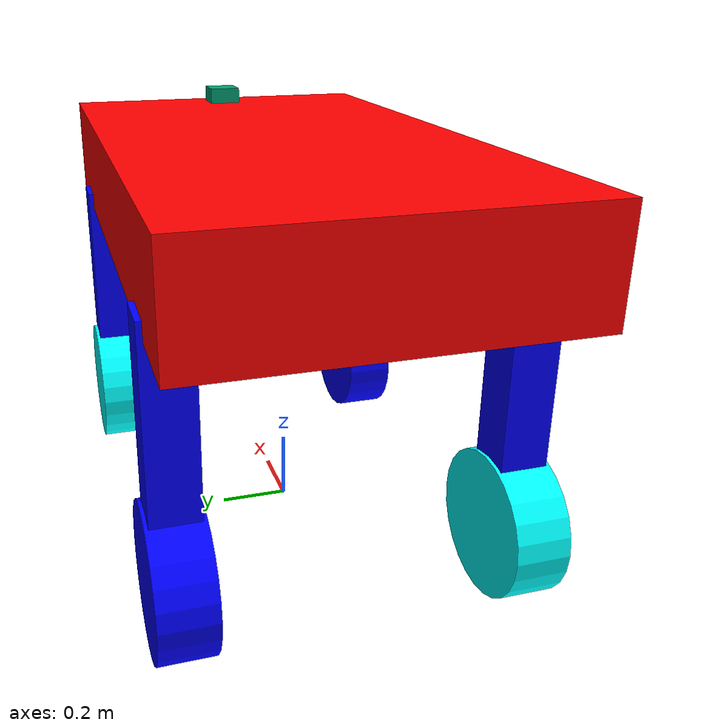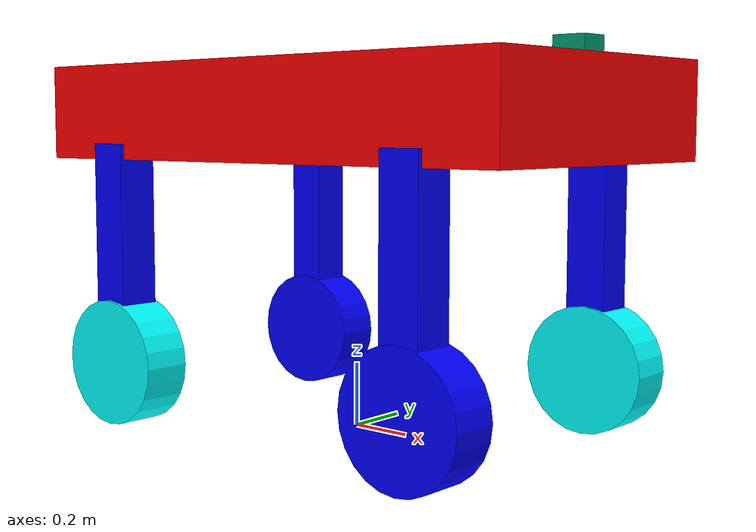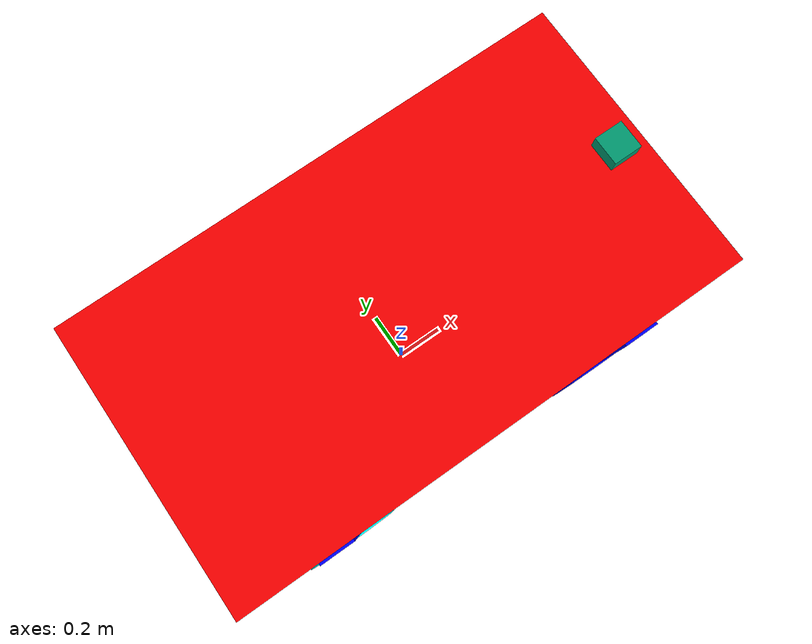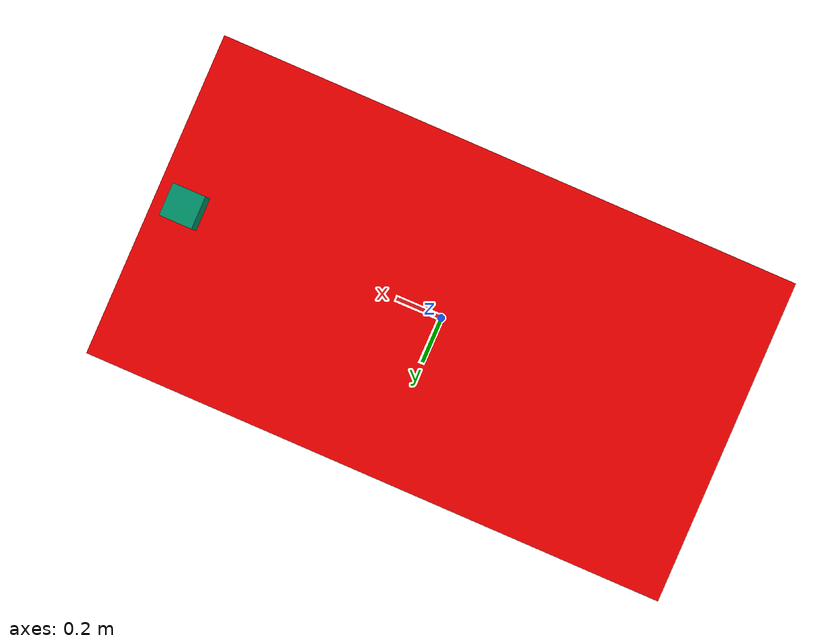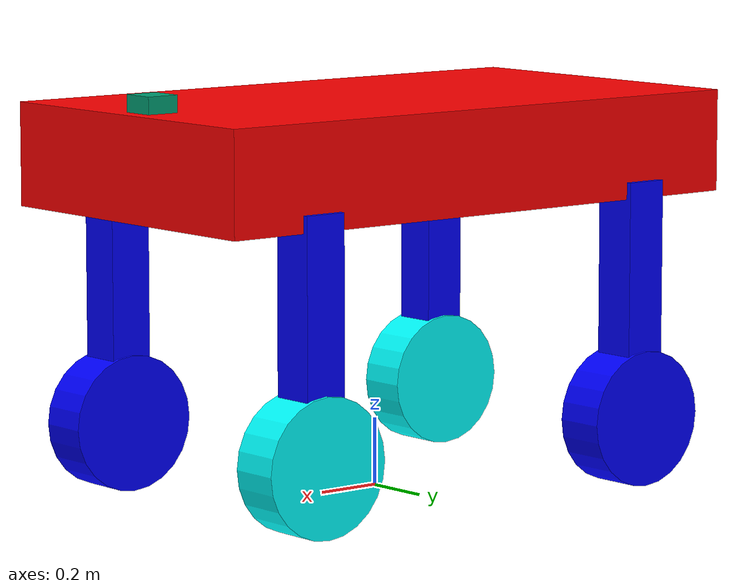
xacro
<?xml version="1.0"?>
<robot xmlns:xacro="http://www.ros.org/wiki/xacro"  name="robot">

    <xacro:include filename="robot_core.xacro" />
    <xacro:include filename="robot_gazebo.xacro" />
    <xacro:include filename="lidar.xacro" />
    <xacro:include filename="ros2_control.xacro" />

</robot>

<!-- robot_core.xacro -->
<robot xmlns:xacro="http://www.ros.org/wiki/xacro"  name="robot">

<!--xacro:include filename="inertial_file.xacro" /-->

<xacro:property name ="chassis_length" value="1.8"/>
<xacro:property name ="chassis_width" value="1"/>
<xacro:property name ="chassis_height" value="0.3"/>
<xacro:property name ="chassis_mass" value="200"/>

<xacro:property name="wheel_radius" value="0.3" />
<xacro:property name="wheel_thickness" value="0.1" />
<xacro:property name="wheel_mass" value="3" />

<xacro:property name="wheel_offset_x" value="1.0"/>
<xacro:property name="wheel_offset_y" value="0.5"/>
<xacro:property name="wheel_offset_z" value="0.01"/>

<xacro:property name="leg_length" value="0.13" />
<xacro:property name="leg_width" value="0.13"/>
<xacro:property name="leg_height" value="0.8"/>
<xacro:property name="leg_mass" value="10"/>

<xacro:property name="leg_offset_x" value="1.0"/>
<xacro:property name="leg_offset_y" value="0.5"/>
<xacro:property name="leg_offset_z" value="0.1"/>

<material name="white">
    <color rgba="1 1 1 1"/>
</material>

<material name="yellow">
    <color rgba="0 1 1 1"/>
</material>

<material name="blue">
    <color rgba="0 0 1 1"/>
</material>

<material name="red">
    <color rgba="1 0 0 1"/>
</material>

<!--World-->

<link name="base_footprint"/>

<!-- Base Link-->

<joint name="base_joint" type="fixed">
    <origin xyz="0 0 1.0" rpy="0 0 0"/>
    <parent link="base_footprint"/>
    <child link="base_link"/>
</joint>

<!-- Base properties -->
<link name="base_link">
    <visual>
        <origin xyz="0 0 0" rpy="0 0 0"/>
        <geometry>
            <box size="${chassis_length} ${chassis_width} ${chassis_height}" />
        </geometry>
        <material name="red"/>
    </visual>
    <collision>
        <origin xyz="0 0 0" rpy="0 0 0"/>
        <geometry>
            <box size="${chassis_length} ${chassis_width} ${chassis_height}" />
        </geometry>
    </collision>
    <inertial>
        <origin xyz="0 0 0" rpy="0 0 0"/>
        <mass value="50" />
        <inertia ixx="4.54" ixy="0.0" ixz="0.0" iyy="13.88" iyz="0.0" izz="17.66" />
    </inertial>
</link>

<!-- Leg front right-->
<joint name="leg_front_right_joint" type="revolute">
    <origin xyz="0.6 -0.45 -0.5" rpy="0 0 0"/>
    <limit lower="-0.78" upper="0.78" effort="10" velocity="0.5"/>
    <parent link="base_link"/>
    <child link="leg_front_right_link"/>
    <axis xyz="0 0 1"/>
</joint>

<link name="leg_front_right_link">
    <visual>
        <origin xyz="0 0 0" rpy="0 0 0"/>
        <geometry>
            <box size="${leg_length} ${leg_width} ${leg_height}"/>
        </geometry>
        <material name="blue" />
    </visual>
    <collision>
        <origin xyz="0 0 0" rpy="0 0 0"/>
        <geometry>
            <box size="${leg_length} ${leg_width} ${leg_height}"/>
        </geometry>
    </collision>
    <inertial>
        <origin xyz="0 0 0.4" rpy="0 0 0"/>
        <mass value="10" />
        <inertia ixx="0.547" ixy="0.0" ixz="0.0" iyy="0.547" iyz="0.0" izz="0.028" />
    </inertial>
</link>

<!-- Wheel front right-->
<joint name="wheel_front_right_joint" type="continuous">
    <origin xyz="0.0 0.0 -0.3" rpy="-${pi/2} 0.0 0.0"/>
    <parent link="leg_front_right_link"/>
    <child link="wheel_front_right_link"/>
    <axis xyz="0 0 1"/> <!-- Axe de rotation (dans cet exemple, axe Y) -->
</joint>

<link name="wheel_front_right_link">
    <visual>
        <origin xyz="0 0 0" rpy="0 0 0"/>
        <geometry>
            <cylinder length="0.15" radius="0.2" />
        </geometry>
        <material name="blue" />
    </visual>
    <collision>
        <origin xyz="0 0 0" rpy="0 0 0"/>
        <geometry>
            <cylinder length="0.15" radius="0.2" />
        </geometry>
    </collision>
    <inertial>
        <origin xyz="0 0 0" rpy="0 0 0"/>
        <mass value="3" />
        <inertia ixx="0.035" ixy="0.0" ixz="0.0" iyy="0.035" iyz="0.0" izz="0.06" />
    </inertial>
</link>

<!-- Leg front left-->
<joint name="leg_front_left_joint" type="revolute">
    <limit lower="-0.78" upper="0.78" effort="10" velocity="0.5"/>
    <origin xyz="0.6 0.45 -0.5" rpy="0 0 0"/>
    <parent link="base_link"/>
    <child link="leg_front_left_link"/>
    <axis xyz="0 0 1"/>
</joint>

<link name="leg_front_left_link">
    <visual>
        <origin xyz="0 0 0" rpy="0 0 0"/>
        <geometry>
            <box size="${leg_length} ${leg_width} ${leg_height}"/>
        </geometry>
        <material name="blue" />
    </visual>
    <collision>
        <origin xyz="0 0 0" rpy="0 0 0"/>
        <geometry>
            <box size="${leg_length} ${leg_width} ${leg_height}"/>
        </geometry>
    </collision>
    <inertial>
        <origin xyz="0 0 0.4" rpy="0 0 0"/>
        <mass value="10" />
         <inertia ixx="0.547" ixy="0.0" ixz="0.0" iyy="0.547" iyz="0.0" izz="0.028" />
    </inertial>
</link>

<!--Leg front left-->
<joint name="wheel_front_left_joint" type="continuous">
    <origin xyz="0.0 0.0 -0.3" rpy="-${pi/2} 0.0 0.0"/>
    <parent link="leg_front_left_link"/>
    <child link="wheel_front_left_link"/>
    <axis xyz="0 0 1"/> <!-- Axe de rotation (dans cet exemple, axe Z) -->
</joint>

<link name="wheel_front_left_link">
    <visual>
        <origin xyz="0 0 0" rpy="0 0 0"/>
        <geometry>
            <cylinder length="0.15" radius="0.2" />
        </geometry>
        <material name="yellow" />
    </visual>
    <collision>
        <origin xyz="0 0 0" rpy="0 0 0"/>
        <geometry>
            <cylinder length="0.15" radius="0.2" />
        </geometry>
    </collision>
    <inertial>
       <origin xyz="0 0 0" rpy="0 0 0"/>
        <mass value="3" />
        <inertia ixx="0.035" ixy="0.0" ixz="0.0" iyy="0.035" iyz="0.0" izz="0.06" />
    </inertial>
</link>

<!--Leg back left -->

<joint name="leg_back_left_joint" type="fixed">
    <origin xyz="-0.6 -0.45 -0.5" rpy="0 0 0"/>
    <parent link="base_link"/>
    <child link="leg_back_left_link"/>
    <axis xyz="0 0 1"/>
</joint>

<link name="leg_back_left_link">
    <visual>
        <origin xyz="0 0 0" rpy="0 0 0"/>
        <geometry>
            <box size="${leg_length} ${leg_width} ${leg_height}"/>
        </geometry>
        <material name="blue" />
    </visual>
    <collision>
        <origin xyz="0 0 0" rpy="0 0 0"/>
        <geometry>
            <box size="${leg_length} ${leg_width} ${leg_height}"/>
        </geometry>
    </collision>
    <inertial>
        <origin xyz="0 0 0.4" rpy="0 0 0"/>
        <mass value="10" />
         <inertia ixx="0.547" ixy="0.0" ixz="0.0" iyy="0.547" iyz="0.0" izz="0.028" />
    </inertial>
</link>
<!--wheel back left-->
<!--Leg front left-->
<joint name="wheel_back_left_joint" type="continuous">
    <origin xyz="0.0 0.0 -0.3" rpy="-${pi/2} 0.0 0.0"/>
    <parent link="leg_back_left_link"/>
    <child link="wheel_back_left_link"/>
    <axis xyz="0 0 1"/> <!-- Axe de rotation (dans cet exemple, axe Z) -->
</joint>

<link name="wheel_back_left_link">
    <visual>
        <origin xyz="0 0 0" rpy="0 0 0"/>
        <geometry>
            <cylinder length="0.15" radius="0.2" />
        </geometry>
        <material name="yellow" />
    </visual>
    <collision>
        <origin xyz="0 0 0" rpy="0 0 0"/>
        <geometry>
            <cylinder length="0.15" radius="0.2" />
        </geometry>
    </collision>
    <inertial>
        <origin xyz="0 0 0" rpy="0 0 0"/>
        <mass value="3" />
        <inertia ixx="0.035" ixy="0.0" ixz="0.0" iyy="0.035" iyz="0.0" izz="0.06" />
    </inertial>
</link>

<!--Leg back right -->

<joint name="leg_back_right_joint" type="fixed">
    <origin xyz="-0.6 0.45 -0.5" rpy="0 0 0"/>
    <parent link="base_link"/>
    <child link="leg_back_right_link"/>
    <axis xyz="0 0 1"/>
</joint>

<link name="leg_back_right_link">
    <visual>
        <origin xyz="0 0 0" rpy="0 0 0"/>
        <geometry>
            <box size="${leg_length} ${leg_width} ${leg_height}"/>
        </geometry>
        <material name="blue" />
    </visual>
    <collision>
        <origin xyz="0 0 0" rpy="0 0 0"/>
        <geometry>
           <box size="${leg_length} ${leg_width} ${leg_height}"/>
        </geometry>
    </collision>
    <inertial>
        <origin xyz="0 0 0.4" rpy="0 0 0"/>
        <mass value="10" />
        <inertia ixx="0.547" ixy="0.0" ixz="0.0" iyy="0.547" iyz="0.0" izz="0.028" />
    </inertial>
</link>

<!--wheel back right-->
<joint name="wheel_back_right_joint" type="continuous">
   <origin xyz="0.0 0.0 -0.3" rpy="-${pi/2} 0.0 0.0"/>
    <parent link="leg_back_right_link"/>
    <child link="wheel_back_right_link"/>
    <axis xyz="0 0 1"/> <!-- Axe de rotation (dans cet exemple, axe Z) -->
</joint>

<link name="wheel_back_right_link">
    <visual>
        <origin xyz="0 0 0" rpy="0 0 0"/>
        <geometry>
            <cylinder length="0.15" radius="0.2" />
        </geometry>
        <material name="blue" />
    </visual>
    <collision>
        <origin xyz="0 0 0" rpy="0 0 0"/>
        <geometry>
            <cylinder length="0.15" radius="0.2" />
        </geometry>
    </collision>
    <inertial>
        <origin xyz="0 0 0" rpy="0 0 0"/>
        <mass value="3" />
        <inertia ixx="0.035" ixy="0.0" ixz="0.0" iyy="0.035" iyz="0.0" izz="0.06" />
    </inertial>
</link>
</robot>

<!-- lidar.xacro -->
<robot xmlns:xacro="http://www.ros.org/wiki/xacro" >
  <joint name="hokuyo_joint" type="fixed">
    <axis xyz="0 1 0" />
    <origin xyz="0.80 0 0.15" rpy="0 0 0"/>
    <parent link="base_link"/>
    <child link="hokuyo_link"/>
  </joint>

  <!-- Hokuyo Laser -->
  <link name="hokuyo_link">
    <collision>
      <origin xyz="0 0 0" rpy="0 0 0"/>
      <geometry>
    <box size="0.1 0.1 0.1"/>
      </geometry>
    </collision>

    <visual>
      <origin xyz="0 0 0" rpy="0 0 0"/>
      <geometry>
        <box size="0.1 0.1 0.1"/>
      </geometry>
    </visual>

    <inertial>
      <mass value="1e-5" />
      <origin xyz="0 0 0" rpy="0 0 0"/>
      <inertia ixx="1e-6" ixy="0" ixz="0" iyy="1e-6" iyz="0" izz="1e-6" />
    </inertial>
  </link>

   <!-- hokuyo -->
  <gazebo reference="hokuyo_link">
    <sensor type="gpu_ray" name="head_hokuyo_sensor">
      <pose>0 0 0 0 0 0</pose>
      <visualize>false</visualize>
      <update_rate>40</update_rate>
      <ray>
        <scan>
          <horizontal>
            <samples>720</samples>
            <resolution>1</resolution>
            <min_angle>-1.570796</min_angle>
            <max_angle>1.570796</max_angle>
          </horizontal>
        </scan>
        <range>
          <min>0.10</min>
          <max>30.0</max>
          <resolution>0.01</resolution>
        </range>
        <noise>
          <type>gaussian</type>
          <mean>0.0</mean>
          <stddev>0.01</stddev>
        </noise>
      </ray>
      <plugin name="gazebo_ros_head_hokuyo_controller" filename="libgazebo_ros_gpu_laser.so">
        <topicName>/rrbot/laser/scan</topicName>
        <frameName>hokuyo_link</frameName>
      </plugin>
    </sensor>
  </gazebo>

  </robot>
